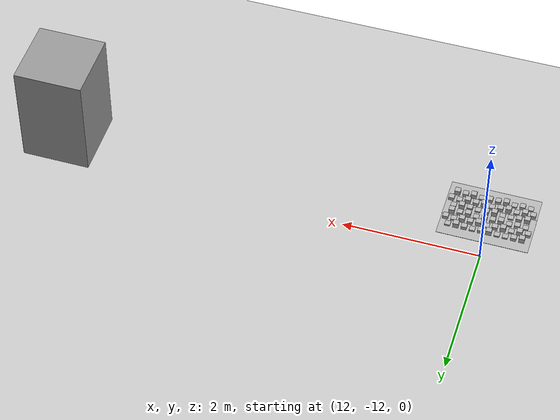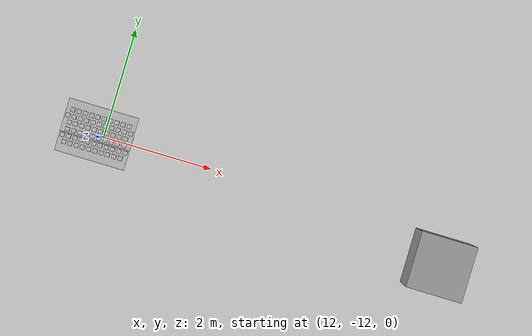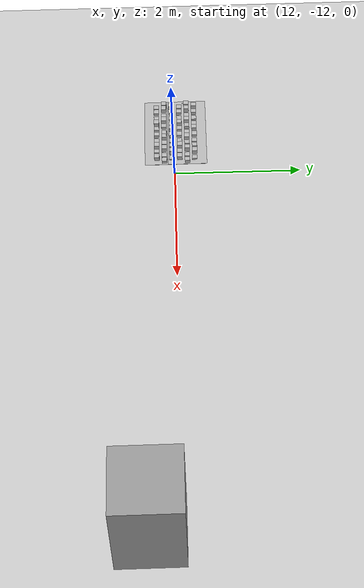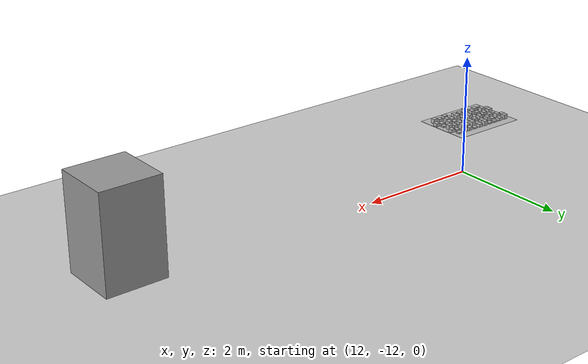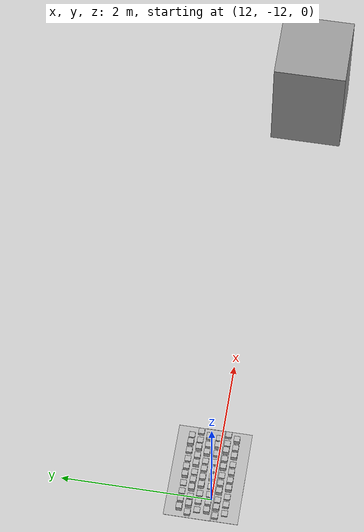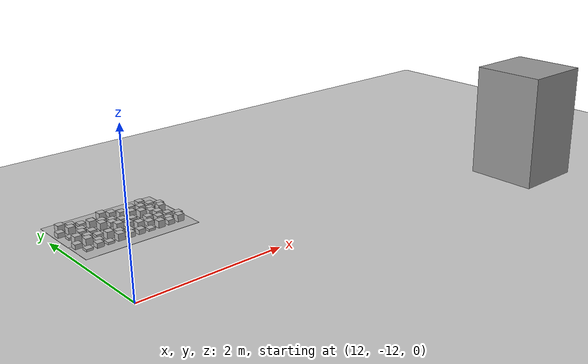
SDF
<sdf version="1.6">
 <world name="default">
  <model name="ground_plane">
   <static>1</static>
   <link name="link">
    <collision name="collision">
     <geometry><plane><normal>0 0 1</normal><size>100 100</size></plane></geometry>
     <surface><friction><ode><mu>100</mu><mu2>50</mu2></ode></friction></surface>
    </collision>
    <visual name="visual">
     <cast_shadows>0</cast_shadows>
     <geometry><plane><normal>0 0 1</normal><size>100 100</size></plane></geometry>
     <material>
      <script><uri>file://media/materials/scripts/gazebo.material</uri><name>Gazebo/Grey</name></script>
     </material>
    </visual>
   </link>
  </model>
  <model name="frc2016_roughterrain_clone_0_clone_clone_3_clone_1_clone_0_clone_clone_1">
   <static>1</static>
   <link name="link">
    <visual name="platform">
     <pose>0 0 0.08269 0 -0 0</pose>
     <geometry><box><size>1.27 0.5969 0.003175</size></box></geometry>
    </visual>
    <collision name="platform">
     <pose>0 0 0.08269 0 -0 0</pose>
     <geometry><box><size>1.27 0.5969 0.003175</size></box></geometry>
    </collision>
    <visual name="row1_block1_sm">
     <pose>0.51435 0.1143 0.09698 0 -0 0</pose>
     <geometry><box><size>0.0762 0.0762 0.0254</size></box></geometry>
    </visual>
    <collision name="row1_block1_sm">
     <pose>0.51435 0.1143 0.09698 0 -0 0</pose>
     <geometry><box><size>0.0762 0.0762 0.0254</size></box></geometry>
    </collision>
    <visual name="row1_block2_lg">
     <pose>0.40005 0.1143 0.12238 0 -0 0</pose>
     <geometry><box><size>0.0762 0.0762 0.0762</size></box></geometry>
    </visual>
    <collision name="row1_block2_lg">
     <pose>0.40005 0.1143 0.12238 0 -0 0</pose>
     <geometry><box><size>0.0762 0.0762 0.0762</size></box></geometry>
    </collision>
    <visual name="row1_block3_md">
     <pose>0.28575 0.1143 0.10968 0 -0 0</pose>
     <geometry><box><size>0.0762 0.0762 0.0508</size></box></geometry>
    </visual>
    <collision name="row1_block3_md">
     <pose>0.28575 0.1143 0.10968 0 -0 0</pose>
     <geometry><box><size>0.0762 0.0762 0.0508</size></box></geometry>
    </collision>
    <visual name="row1_block4_sm">
     <pose>0.17145 0.1143 0.09698 0 -0 0</pose>
     <geometry><box><size>0.0762 0.0762 0.0254</size></box></geometry>
    </visual>
    <collision name="row1_block4_sm">
     <pose>0.17145 0.1143 0.09698 0 -0 0</pose>
     <geometry><box><size>0.0762 0.0762 0.0254</size></box></geometry>
    </collision>
    <visual name="row1_block5_md">
     <pose>0.05715 0.1143 0.10968 0 -0 0</pose>
     <geometry><box><size>0.0762 0.0762 0.0508</size></box></geometry>
    </visual>
    <collision name="row1_block5_md">
     <pose>0.05715 0.1143 0.10968 0 -0 0</pose>
     <geometry><box><size>0.0762 0.0762 0.0508</size></box></geometry>
    </collision>
    <visual name="row1_block6_lg">
     <pose>-0.05715 0.1143 0.12238 0 -0 0</pose>
     <geometry><box><size>0.0762 0.0762 0.0762</size></box></geometry>
    </visual>
    <collision name="row1_block6_lg">
     <pose>-0.05715 0.1143 0.12238 0 -0 0</pose>
     <geometry><box><size>0.0762 0.0762 0.0762</size></box></geometry>
    </collision>
    <visual name="row1_block7_sm">
     <pose>-0.17145 0.1143 0.09698 0 -0 0</pose>
     <geometry><box><size>0.0762 0.0762 0.0254</size></box></geometry>
    </visual>
    <collision name="row1_block7_sm">
     <pose>-0.17145 0.1143 0.09698 0 -0 0</pose>
     <geometry><box><size>0.0762 0.0762 0.0254</size></box></geometry>
    </collision>
    <visual name="row1_block8_sm">
     <pose>-0.28575 0.1143 0.09698 0 -0 0</pose>
     <geometry><box><size>0.0762 0.0762 0.0254</size></box></geometry>
    </visual>
    <collision name="row1_block8_sm">
     <pose>-0.28575 0.1143 0.09698 0 -0 0</pose>
     <geometry><box><size>0.0762 0.0762 0.0254</size></box></geometry>
    </collision>
    <visual name="row1_block9_md">
     <pose>-0.40005 0.1143 0.10968 0 -0 0</pose>
     <geometry><box><size>0.0762 0.0762 0.0508</size></box></geometry>
    </visual>
    <collision name="row1_block9_md">
     <pose>-0.40005 0.1143 0.10968 0 -0 0</pose>
     <geometry><box><size>0.0762 0.0762 0.0508</size></box></geometry>
    </collision>
    <visual name="row1_block10_lg">
     <pose>-0.51435 0.1143 0.12238 0 -0 0</pose>
     <geometry><box><size>0.0762 0.0762 0.0762</size></box></geometry>
    </visual>
    <collision name="row1_block10_lg">
     <pose>-0.51435 0.1143 0.12238 0 -0 0</pose>
     <geometry><box><size>0.0762 0.0762 0.0762</size></box></geometry>
    </collision>
    <visual name="row2_block1_md">
     <pose>0.5715 0 0.10968 0 -0 0</pose>
     <geometry><box><size>0.0762 0.0762 0.0508</size></box></geometry>
    </visual>
    <collision name="row2_block1_md">
     <pose>0.5715 0 0.10968 0 -0 0</pose>
     <geometry><box><size>0.0762 0.0762 0.0508</size></box></geometry>
    </collision>
    <visual name="row2_block2_sm">
     <pose>0.4572 0 0.09698 0 -0 0</pose>
     <geometry><box><size>0.0762 0.0762 0.0254</size></box></geometry>
    </visual>
    <collision name="row2_block2_sm">
     <pose>0.4572 0 0.09698 0 -0 0</pose>
     <geometry><box><size>0.0762 0.0762 0.0254</size></box></geometry>
    </collision>
    <visual name="row2_block3_lg">
     <pose>0.3429 0 0.12238 0 -0 0</pose>
     <geometry><box><size>0.0762 0.0762 0.0762</size></box></geometry>
    </visual>
    <collision name="row2_block3_lg">
     <pose>0.3429 0 0.12238 0 -0 0</pose>
     <geometry><box><size>0.0762 0.0762 0.0762</size></box></geometry>
    </collision>
    <visual name="row2_block4_md">
     <pose>0.2286 0 0.10968 0 -0 0</pose>
     <geometry><box><size>0.0762 0.0762 0.0508</size></box></geometry>
    </visual>
    <collision name="row2_block4_md">
     <pose>0.2286 0 0.10968 0 -0 0</pose>
     <geometry><box><size>0.0762 0.0762 0.0508</size></box></geometry>
    </collision>
    <visual name="row2_block5_lg">
     <pose>0.1143 0 0.12238 0 -0 0</pose>
     <geometry><box><size>0.0762 0.0762 0.0762</size></box></geometry>
    </visual>
    <collision name="row2_block5_lg">
     <pose>0.1143 0 0.12238 0 -0 0</pose>
     <geometry><box><size>0.0762 0.0762 0.0762</size></box></geometry>
    </collision>
    <visual name="row2_block6_sm">
     <pose>0 0 0.09698 0 -0 0</pose>
     <geometry><box><size>0.0762 0.0762 0.0254</size></box></geometry>
    </visual>
    <collision name="row2_block6_sm">
     <pose>0 0 0.09698 0 -0 0</pose>
     <geometry><box><size>0.0762 0.0762 0.0254</size></box></geometry>
    </collision>
    <visual name="row2_block7_md">
     <pose>-0.1143 0 0.10968 0 -0 0</pose>
     <geometry><box><size>0.0762 0.0762 0.0508</size></box></geometry>
    </visual>
    <collision name="row2_block7_md">
     <pose>-0.1143 0 0.10968 0 -0 0</pose>
     <geometry><box><size>0.0762 0.0762 0.0508</size></box></geometry>
    </collision>
    <visual name="row2_block8_lg">
     <pose>-0.2286 0 0.12238 0 -0 0</pose>
     <geometry><box><size>0.0762 0.0762 0.0762</size></box></geometry>
    </visual>
    <collision name="row2_block8_lg">
     <pose>-0.2286 0 0.12238 0 -0 0</pose>
     <geometry><box><size>0.0762 0.0762 0.0762</size></box></geometry>
    </collision>
    <visual name="row2_block9_sm">
     <pose>-0.3429 0 0.09698 0 -0 0</pose>
     <geometry><box><size>0.0762 0.0762 0.0254</size></box></geometry>
    </visual>
    <collision name="row2_block9_sm">
     <pose>-0.3429 0 0.09698 0 -0 0</pose>
     <geometry><box><size>0.0762 0.0762 0.0254</size></box></geometry>
    </collision>
    <visual name="row2_block10_lg">
     <pose>-0.4572 0 0.12238 0 -0 0</pose>
     <geometry><box><size>0.0762 0.0762 0.0762</size></box></geometry>
    </visual>
    <collision name="row2_block10_lg">
     <pose>-0.4572 0 0.12238 0 -0 0</pose>
     <geometry><box><size>0.0762 0.0762 0.0762</size></box></geometry>
    </collision>
    <visual name="row2_block11_md">
     <pose>-0.5715 0 0.10968 0 -0 0</pose>
     <geometry><box><size>0.0762 0.0762 0.0508</size></box></geometry>
    </visual>
    <collision name="row2_block11_md">
     <pose>-0.5715 0 0.10968 0 -0 0</pose>
     <geometry><box><size>0.0762 0.0762 0.0508</size></box></geometry>
    </collision>
    <visual name="row3_block1_lg">
     <pose>0.51435 -0.1143 0.12238 0 -0 0</pose>
     <geometry><box><size>0.0762 0.0762 0.0762</size></box></geometry>
    </visual>
    <collision name="row3_block1_lg">
     <pose>0.51435 -0.1143 0.12238 0 -0 0</pose>
     <geometry><box><size>0.0762 0.0762 0.0762</size></box></geometry>
    </collision>
    <visual name="row3_block2_md">
     <pose>0.40005 -0.1143 0.10968 0 -0 0</pose>
     <geometry><box><size>0.0762 0.0762 0.0508</size></box></geometry>
    </visual>
    <collision name="row3_block2_md">
     <pose>0.40005 -0.1143 0.10968 0 -0 0</pose>
     <geometry><box><size>0.0762 0.0762 0.0508</size></box></geometry>
    </collision>
    <visual name="row3_block3_lg">
     <pose>0.28575 -0.1143 0.12238 0 -0 0</pose>
     <geometry><box><size>0.0762 0.0762 0.0762</size></box></geometry>
    </visual>
    <collision name="row3_block3_lg">
     <pose>0.28575 -0.1143 0.12238 0 -0 0</pose>
     <geometry><box><size>0.0762 0.0762 0.0762</size></box></geometry>
    </collision>
    <visual name="row3_block4_sm">
     <pose>0.17145 -0.1143 0.09698 0 -0 0</pose>
     <geometry><box><size>0.0762 0.0762 0.0254</size></box></geometry>
    </visual>
    <collision name="row3_block4_sm">
     <pose>0.17145 -0.1143 0.09698 0 -0 0</pose>
     <geometry><box><size>0.0762 0.0762 0.0254</size></box></geometry>
    </collision>
    <visual name="row3_block5_md">
     <pose>0.05715 -0.1143 0.10968 0 -0 0</pose>
     <geometry><box><size>0.0762 0.0762 0.0508</size></box></geometry>
    </visual>
    <collision name="row3_block5_md">
     <pose>0.05715 -0.1143 0.10968 0 -0 0</pose>
     <geometry><box><size>0.0762 0.0762 0.0508</size></box></geometry>
    </collision>
    <visual name="row3_block6_md">
     <pose>-0.05715 -0.1143 0.10968 0 -0 0</pose>
     <geometry><box><size>0.0762 0.0762 0.0508</size></box></geometry>
    </visual>
    <collision name="row3_block6_md">
     <pose>-0.05715 -0.1143 0.10968 0 -0 0</pose>
     <geometry><box><size>0.0762 0.0762 0.0508</size></box></geometry>
    </collision>
    <visual name="row3_block7_lg">
     <pose>-0.17145 -0.1143 0.12238 0 -0 0</pose>
     <geometry><box><size>0.0762 0.0762 0.0762</size></box></geometry>
    </visual>
    <collision name="row3_block7_lg">
     <pose>-0.17145 -0.1143 0.12238 0 -0 0</pose>
     <geometry><box><size>0.0762 0.0762 0.0762</size></box></geometry>
    </collision>
    <visual name="row3_block8_sm">
     <pose>-0.28575 -0.1143 0.09698 0 -0 0</pose>
     <geometry><box><size>0.0762 0.0762 0.0254</size></box></geometry>
    </visual>
    <collision name="row3_block8_sm">
     <pose>-0.28575 -0.1143 0.09698 0 -0 0</pose>
     <geometry><box><size>0.0762 0.0762 0.0254</size></box></geometry>
    </collision>
    <visual name="row3_block9_md">
     <pose>-0.40005 -0.1143 0.10968 0 -0 0</pose>
     <geometry><box><size>0.0762 0.0762 0.0508</size></box></geometry>
    </visual>
    <collision name="row3_block9_md">
     <pose>-0.40005 -0.1143 0.10968 0 -0 0</pose>
     <geometry><box><size>0.0762 0.0762 0.0508</size></box></geometry>
    </collision>
    <visual name="row3_block10_sm">
     <pose>-0.51435 -0.1143 0.09698 0 -0 0</pose>
     <geometry><box><size>0.0762 0.0762 0.0254</size></box></geometry>
    </visual>
    <collision name="row3_block10_sm">
     <pose>-0.51435 -0.1143 0.09698 0 -0 0</pose>
     <geometry><box><size>0.0762 0.0762 0.0254</size></box></geometry>
    </collision>
   </link>
   <pose>11.9297 -11.7919 0.826533 0 -0 0</pose>
  </model>
  <model name="frc2016_roughterrain_clone_0_clone_clone_3_clone_1_clone_0_clone_clone_2">
   <static>1</static>
   <link name="link">
    <visual name="platform">
     <pose>0 0 0.08269 0 -0 0</pose>
     <geometry><box><size>1.27 0.5969 0.003175</size></box></geometry>
    </visual>
    <collision name="platform">
     <pose>0 0 0.08269 0 -0 0</pose>
     <geometry><box><size>1.27 0.5969 0.003175</size></box></geometry>
    </collision>
    <visual name="row1_block1_sm">
     <pose>0.51435 0.1143 0.09698 0 -0 0</pose>
     <geometry><box><size>0.0762 0.0762 0.0254</size></box></geometry>
    </visual>
    <collision name="row1_block1_sm">
     <pose>0.51435 0.1143 0.09698 0 -0 0</pose>
     <geometry><box><size>0.0762 0.0762 0.0254</size></box></geometry>
    </collision>
    <visual name="row1_block2_lg">
     <pose>0.40005 0.1143 0.12238 0 -0 0</pose>
     <geometry><box><size>0.0762 0.0762 0.0762</size></box></geometry>
    </visual>
    <collision name="row1_block2_lg">
     <pose>0.40005 0.1143 0.12238 0 -0 0</pose>
     <geometry><box><size>0.0762 0.0762 0.0762</size></box></geometry>
    </collision>
    <visual name="row1_block3_md">
     <pose>0.28575 0.1143 0.10968 0 -0 0</pose>
     <geometry><box><size>0.0762 0.0762 0.0508</size></box></geometry>
    </visual>
    <collision name="row1_block3_md">
     <pose>0.28575 0.1143 0.10968 0 -0 0</pose>
     <geometry><box><size>0.0762 0.0762 0.0508</size></box></geometry>
    </collision>
    <visual name="row1_block4_sm">
     <pose>0.17145 0.1143 0.09698 0 -0 0</pose>
     <geometry><box><size>0.0762 0.0762 0.0254</size></box></geometry>
    </visual>
    <collision name="row1_block4_sm">
     <pose>0.17145 0.1143 0.09698 0 -0 0</pose>
     <geometry><box><size>0.0762 0.0762 0.0254</size></box></geometry>
    </collision>
    <visual name="row1_block5_md">
     <pose>0.05715 0.1143 0.10968 0 -0 0</pose>
     <geometry><box><size>0.0762 0.0762 0.0508</size></box></geometry>
    </visual>
    <collision name="row1_block5_md">
     <pose>0.05715 0.1143 0.10968 0 -0 0</pose>
     <geometry><box><size>0.0762 0.0762 0.0508</size></box></geometry>
    </collision>
    <visual name="row1_block6_lg">
     <pose>-0.05715 0.1143 0.12238 0 -0 0</pose>
     <geometry><box><size>0.0762 0.0762 0.0762</size></box></geometry>
    </visual>
    <collision name="row1_block6_lg">
     <pose>-0.05715 0.1143 0.12238 0 -0 0</pose>
     <geometry><box><size>0.0762 0.0762 0.0762</size></box></geometry>
    </collision>
    <visual name="row1_block7_sm">
     <pose>-0.17145 0.1143 0.09698 0 -0 0</pose>
     <geometry><box><size>0.0762 0.0762 0.0254</size></box></geometry>
    </visual>
    <collision name="row1_block7_sm">
     <pose>-0.17145 0.1143 0.09698 0 -0 0</pose>
     <geometry><box><size>0.0762 0.0762 0.0254</size></box></geometry>
    </collision>
    <visual name="row1_block8_sm">
     <pose>-0.28575 0.1143 0.09698 0 -0 0</pose>
     <geometry><box><size>0.0762 0.0762 0.0254</size></box></geometry>
    </visual>
    <collision name="row1_block8_sm">
     <pose>-0.28575 0.1143 0.09698 0 -0 0</pose>
     <geometry><box><size>0.0762 0.0762 0.0254</size></box></geometry>
    </collision>
    <visual name="row1_block9_md">
     <pose>-0.40005 0.1143 0.10968 0 -0 0</pose>
     <geometry><box><size>0.0762 0.0762 0.0508</size></box></geometry>
    </visual>
    <collision name="row1_block9_md">
     <pose>-0.40005 0.1143 0.10968 0 -0 0</pose>
     <geometry><box><size>0.0762 0.0762 0.0508</size></box></geometry>
    </collision>
    <visual name="row1_block10_lg">
     <pose>-0.51435 0.1143 0.12238 0 -0 0</pose>
     <geometry><box><size>0.0762 0.0762 0.0762</size></box></geometry>
    </visual>
    <collision name="row1_block10_lg">
     <pose>-0.51435 0.1143 0.12238 0 -0 0</pose>
     <geometry><box><size>0.0762 0.0762 0.0762</size></box></geometry>
    </collision>
    <visual name="row2_block1_md">
     <pose>0.5715 0 0.10968 0 -0 0</pose>
     <geometry><box><size>0.0762 0.0762 0.0508</size></box></geometry>
    </visual>
    <collision name="row2_block1_md">
     <pose>0.5715 0 0.10968 0 -0 0</pose>
     <geometry><box><size>0.0762 0.0762 0.0508</size></box></geometry>
    </collision>
    <visual name="row2_block2_sm">
     <pose>0.4572 0 0.09698 0 -0 0</pose>
     <geometry><box><size>0.0762 0.0762 0.0254</size></box></geometry>
    </visual>
    <collision name="row2_block2_sm">
     <pose>0.4572 0 0.09698 0 -0 0</pose>
     <geometry><box><size>0.0762 0.0762 0.0254</size></box></geometry>
    </collision>
    <visual name="row2_block3_lg">
     <pose>0.3429 0 0.12238 0 -0 0</pose>
     <geometry><box><size>0.0762 0.0762 0.0762</size></box></geometry>
    </visual>
    <collision name="row2_block3_lg">
     <pose>0.3429 0 0.12238 0 -0 0</pose>
     <geometry><box><size>0.0762 0.0762 0.0762</size></box></geometry>
    </collision>
    <visual name="row2_block4_md">
     <pose>0.2286 0 0.10968 0 -0 0</pose>
     <geometry><box><size>0.0762 0.0762 0.0508</size></box></geometry>
    </visual>
    <collision name="row2_block4_md">
     <pose>0.2286 0 0.10968 0 -0 0</pose>
     <geometry><box><size>0.0762 0.0762 0.0508</size></box></geometry>
    </collision>
    <visual name="row2_block5_lg">
     <pose>0.1143 0 0.12238 0 -0 0</pose>
     <geometry><box><size>0.0762 0.0762 0.0762</size></box></geometry>
    </visual>
    <collision name="row2_block5_lg">
     <pose>0.1143 0 0.12238 0 -0 0</pose>
     <geometry><box><size>0.0762 0.0762 0.0762</size></box></geometry>
    </collision>
    <visual name="row2_block6_sm">
     <pose>0 0 0.09698 0 -0 0</pose>
     <geometry><box><size>0.0762 0.0762 0.0254</size></box></geometry>
    </visual>
    <collision name="row2_block6_sm">
     <pose>0 0 0.09698 0 -0 0</pose>
     <geometry><box><size>0.0762 0.0762 0.0254</size></box></geometry>
    </collision>
    <visual name="row2_block7_md">
     <pose>-0.1143 0 0.10968 0 -0 0</pose>
     <geometry><box><size>0.0762 0.0762 0.0508</size></box></geometry>
    </visual>
    <collision name="row2_block7_md">
     <pose>-0.1143 0 0.10968 0 -0 0</pose>
     <geometry><box><size>0.0762 0.0762 0.0508</size></box></geometry>
    </collision>
    <visual name="row2_block8_lg">
     <pose>-0.2286 0 0.12238 0 -0 0</pose>
     <geometry><box><size>0.0762 0.0762 0.0762</size></box></geometry>
    </visual>
    <collision name="row2_block8_lg">
     <pose>-0.2286 0 0.12238 0 -0 0</pose>
     <geometry><box><size>0.0762 0.0762 0.0762</size></box></geometry>
    </collision>
    <visual name="row2_block9_sm">
     <pose>-0.3429 0 0.09698 0 -0 0</pose>
     <geometry><box><size>0.0762 0.0762 0.0254</size></box></geometry>
    </visual>
    <collision name="row2_block9_sm">
     <pose>-0.3429 0 0.09698 0 -0 0</pose>
     <geometry><box><size>0.0762 0.0762 0.0254</size></box></geometry>
    </collision>
    <visual name="row2_block10_lg">
     <pose>-0.4572 0 0.12238 0 -0 0</pose>
     <geometry><box><size>0.0762 0.0762 0.0762</size></box></geometry>
    </visual>
    <collision name="row2_block10_lg">
     <pose>-0.4572 0 0.12238 0 -0 0</pose>
     <geometry><box><size>0.0762 0.0762 0.0762</size></box></geometry>
    </collision>
    <visual name="row2_block11_md">
     <pose>-0.5715 0 0.10968 0 -0 0</pose>
     <geometry><box><size>0.0762 0.0762 0.0508</size></box></geometry>
    </visual>
    <collision name="row2_block11_md">
     <pose>-0.5715 0 0.10968 0 -0 0</pose>
     <geometry><box><size>0.0762 0.0762 0.0508</size></box></geometry>
    </collision>
    <visual name="row3_block1_lg">
     <pose>0.51435 -0.1143 0.12238 0 -0 0</pose>
     <geometry><box><size>0.0762 0.0762 0.0762</size></box></geometry>
    </visual>
    <collision name="row3_block1_lg">
     <pose>0.51435 -0.1143 0.12238 0 -0 0</pose>
     <geometry><box><size>0.0762 0.0762 0.0762</size></box></geometry>
    </collision>
    <visual name="row3_block2_md">
     <pose>0.40005 -0.1143 0.10968 0 -0 0</pose>
     <geometry><box><size>0.0762 0.0762 0.0508</size></box></geometry>
    </visual>
    <collision name="row3_block2_md">
     <pose>0.40005 -0.1143 0.10968 0 -0 0</pose>
     <geometry><box><size>0.0762 0.0762 0.0508</size></box></geometry>
    </collision>
    <visual name="row3_block3_lg">
     <pose>0.28575 -0.1143 0.12238 0 -0 0</pose>
     <geometry><box><size>0.0762 0.0762 0.0762</size></box></geometry>
    </visual>
    <collision name="row3_block3_lg">
     <pose>0.28575 -0.1143 0.12238 0 -0 0</pose>
     <geometry><box><size>0.0762 0.0762 0.0762</size></box></geometry>
    </collision>
    <visual name="row3_block4_sm">
     <pose>0.17145 -0.1143 0.09698 0 -0 0</pose>
     <geometry><box><size>0.0762 0.0762 0.0254</size></box></geometry>
    </visual>
    <collision name="row3_block4_sm">
     <pose>0.17145 -0.1143 0.09698 0 -0 0</pose>
     <geometry><box><size>0.0762 0.0762 0.0254</size></box></geometry>
    </collision>
    <visual name="row3_block5_md">
     <pose>0.05715 -0.1143 0.10968 0 -0 0</pose>
     <geometry><box><size>0.0762 0.0762 0.0508</size></box></geometry>
    </visual>
    <collision name="row3_block5_md">
     <pose>0.05715 -0.1143 0.10968 0 -0 0</pose>
     <geometry><box><size>0.0762 0.0762 0.0508</size></box></geometry>
    </collision>
    <visual name="row3_block6_md">
     <pose>-0.05715 -0.1143 0.10968 0 -0 0</pose>
     <geometry><box><size>0.0762 0.0762 0.0508</size></box></geometry>
    </visual>
    <collision name="row3_block6_md">
     <pose>-0.05715 -0.1143 0.10968 0 -0 0</pose>
     <geometry><box><size>0.0762 0.0762 0.0508</size></box></geometry>
    </collision>
    <visual name="row3_block7_lg">
     <pose>-0.17145 -0.1143 0.12238 0 -0 0</pose>
     <geometry><box><size>0.0762 0.0762 0.0762</size></box></geometry>
    </visual>
    <collision name="row3_block7_lg">
     <pose>-0.17145 -0.1143 0.12238 0 -0 0</pose>
     <geometry><box><size>0.0762 0.0762 0.0762</size></box></geometry>
    </collision>
    <visual name="row3_block8_sm">
     <pose>-0.28575 -0.1143 0.09698 0 -0 0</pose>
     <geometry><box><size>0.0762 0.0762 0.0254</size></box></geometry>
    </visual>
    <collision name="row3_block8_sm">
     <pose>-0.28575 -0.1143 0.09698 0 -0 0</pose>
     <geometry><box><size>0.0762 0.0762 0.0254</size></box></geometry>
    </collision>
    <visual name="row3_block9_md">
     <pose>-0.40005 -0.1143 0.10968 0 -0 0</pose>
     <geometry><box><size>0.0762 0.0762 0.0508</size></box></geometry>
    </visual>
    <collision name="row3_block9_md">
     <pose>-0.40005 -0.1143 0.10968 0 -0 0</pose>
     <geometry><box><size>0.0762 0.0762 0.0508</size></box></geometry>
    </collision>
    <visual name="row3_block10_sm">
     <pose>-0.51435 -0.1143 0.09698 0 -0 0</pose>
     <geometry><box><size>0.0762 0.0762 0.0254</size></box></geometry>
    </visual>
    <collision name="row3_block10_sm">
     <pose>-0.51435 -0.1143 0.09698 0 -0 0</pose>
     <geometry><box><size>0.0762 0.0762 0.0254</size></box></geometry>
    </collision>
   </link>
   <pose>11.9331 -12.1431 0.826533 0 -0 0</pose>
  </model>
  <model name="unit_box_clone_10_clone_13_clone_0_clone_1">
   <pose>18.3231 -12.4405 0.799368 -5e-06 1e-06 2e-06</pose>
   <link name="link">
    <inertial>
     <mass>1</mass>
     <inertia>
      <ixx>0.166667</ixx>
      <ixy>0</ixy>
      <ixz>0</ixz>
      <iyy>0.166667</iyy>
      <iyz>0</iyz>
      <izz>0.166667</izz>
     </inertia>
    </inertial>
    <collision name="collision"><geometry><box><size>1 1 1.59874</size></box></geometry></collision>
    <visual name="visual">
     <geometry><box><size>1 1 1.59874</size></box></geometry>
     <material>
      <script><name>Gazebo/Grey</name><uri>file://media/materials/scripts/gazebo.material</uri></script>
     </material>
    </visual>
   </link>
  </model>
 </world>
</sdf>
